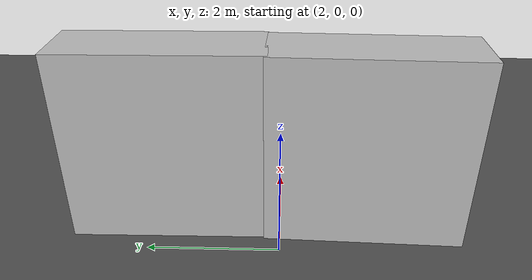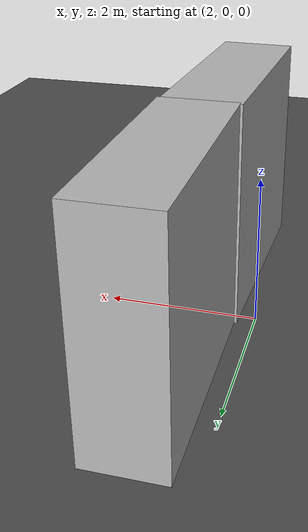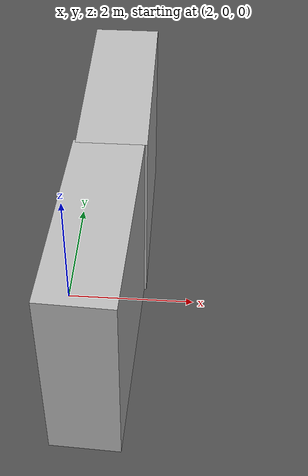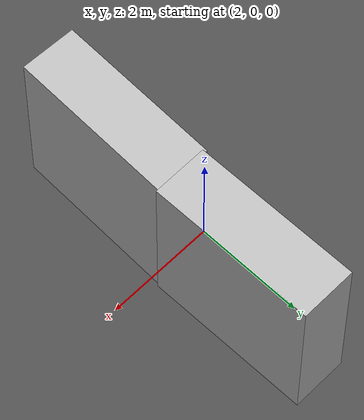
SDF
<sdf version="1.4">
 <world name="default">
  <model name="ground_plane">
   <static>1</static>
   <link name="link">
    <collision name="collision">
     <geometry><plane><normal>0 0 1</normal><size>100 100</size></plane></geometry>
     <surface><friction><ode><mu>100</mu><mu2>50</mu2></ode></friction></surface>
    </collision>
    <visual name="visual">
     <cast_shadows>0</cast_shadows>
     <geometry><plane><normal>0 0 1</normal><size>100 100</size></plane></geometry>
     <material>
      <script><uri>file://media/materials/scripts/gazebo.material</uri><name>Gazebo/Grey</name></script>
     </material>
    </visual>
    <velocity_decay><linear>0</linear><angular>0</angular></velocity_decay>
   </link>
  </model>
  <light name="sun" type="directional">
   <pose>0 0 10 0 -0 0</pose>
   <diffuse>0.8 0.8 0.8 1</diffuse>
   <specular>0.2 0.2 0.2 1</specular>
   <attenuation>
    <range>1000</range>
    <constant>0.9</constant>
    <linear>0.01</linear>
    <quadratic>0.001</quadratic>
   </attenuation>
   <direction>-0.5 0.1 -0.9</direction>
  </light>
  <plugin name="ros_interface_plugin" filename="librotors_gazebo_ros_interface_plugin.so"/>
  <spherical_coordinates>
   <surface_model>EARTH_WGS84</surface_model>
   <latitude_deg>47.3667</latitude_deg>
   <longitude_deg>8.55</longitude_deg>
   <elevation>500</elevation>
   <heading_deg>0</heading_deg>
  </spherical_coordinates>
  <physics type="ode">
   <ode>
    <solver><type>quick</type><iters>1000</iters><sor>1.3</sor></solver>
    <constraints>
     <cfm>0</cfm>
     <erp>0.2</erp>
     <contact_max_correcting_vel>100</contact_max_correcting_vel>
     <contact_surface_layer>0.001</contact_surface_layer>
    </constraints>
   </ode>
   <max_step_size>0.01</max_step_size>
   <real_time_factor>1</real_time_factor>
   <real_time_update_rate>100</real_time_update_rate>
   <gravity>0 0 -9.8</gravity>
  </physics>
  <scene><ambient>0.4 0.4 0.4 1</ambient><background>0.7 0.7 0.7 1</background><shadows>1</shadows></scene>
  <model name="asphalt_plane">
   <static>1</static>
   <link name="link">
    <collision name="collision"><geometry><box><size>20 20 0.1</size></box></geometry></collision>
    <visual name="visual">
     <cast_shadows>0</cast_shadows>
     <geometry><box><size>20 20 0.1</size></box></geometry>
     <material>
      <script>
       <uri>model://asphalt_plane/materials/scripts</uri>
       <uri>model://asphalt_plane/materials/textures</uri>
       <name>vrc/asphalt</name>
      </script>
     </material>
    </visual>
    <velocity_decay><linear>0</linear><angular>0</angular></velocity_decay>
   </link>
   <pose>0.003851 -0.048354 0 0 -0 0.010479</pose>
  </model>
  <model name="brick_box_3x1x3">
   <static>1</static>
   <link name="chassis">
    <pose>0 0 1.5 0 -0 0</pose>
    <collision name="collision"><geometry><box><size>3 1 3</size></box></geometry></collision>
    <visual name="visual">
     <geometry><mesh><uri>model://brick_box_3x1x3/meshes/simple_box.dae</uri><scale>3 1 3</scale></mesh></geometry>
     <material>
      <script>
       <uri>model://brick_box_3x1x3/materials/scripts</uri>
       <uri>model://brick_box_3x1x3/materials/textures</uri>
       <name>BrickBox/Diffuse</name>
      </script>
     </material>
    </visual>
    <velocity_decay><linear>0</linear><angular>0</angular></velocity_decay>
   </link>
   <pose>2.64792 -1.27896 0 0 0 -1.60766</pose>
  </model>
  <model name="brick_box_3x1x3_0">
   <static>1</static>
   <link name="chassis">
    <pose>0 0 1.5 0 -0 0</pose>
    <collision name="collision"><geometry><box><size>3 1 3</size></box></geometry></collision>
    <visual name="visual">
     <geometry><mesh><uri>model://brick_box_3x1x3/meshes/simple_box.dae</uri><scale>3 1 3</scale></mesh></geometry>
     <material>
      <script>
       <uri>model://brick_box_3x1x3/materials/scripts</uri>
       <uri>model://brick_box_3x1x3/materials/textures</uri>
       <name>BrickBox/Diffuse</name>
      </script>
     </material>
    </visual>
    <velocity_decay><linear>0</linear><angular>0</angular></velocity_decay>
   </link>
   <pose>2.72593 1.68321 0 0 0 -1.56325</pose>
  </model>
 </world>
</sdf>
